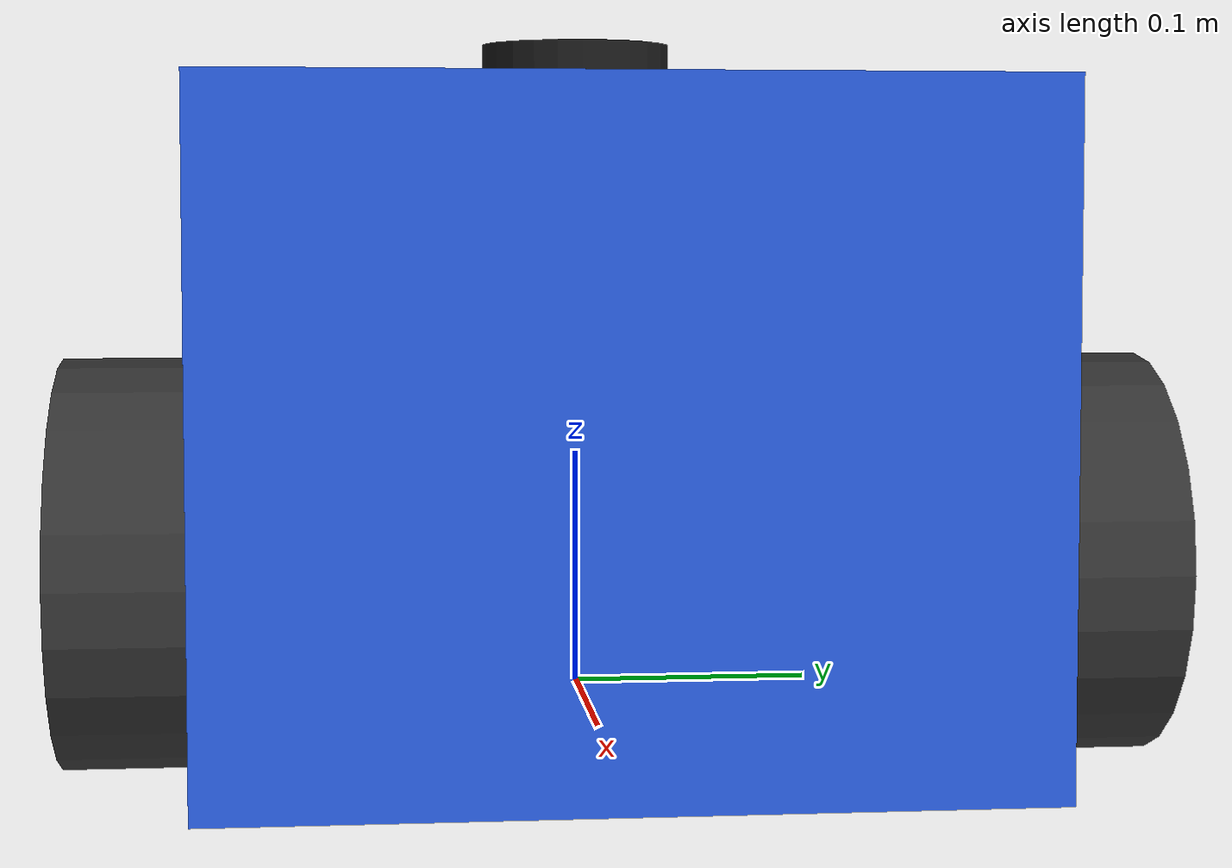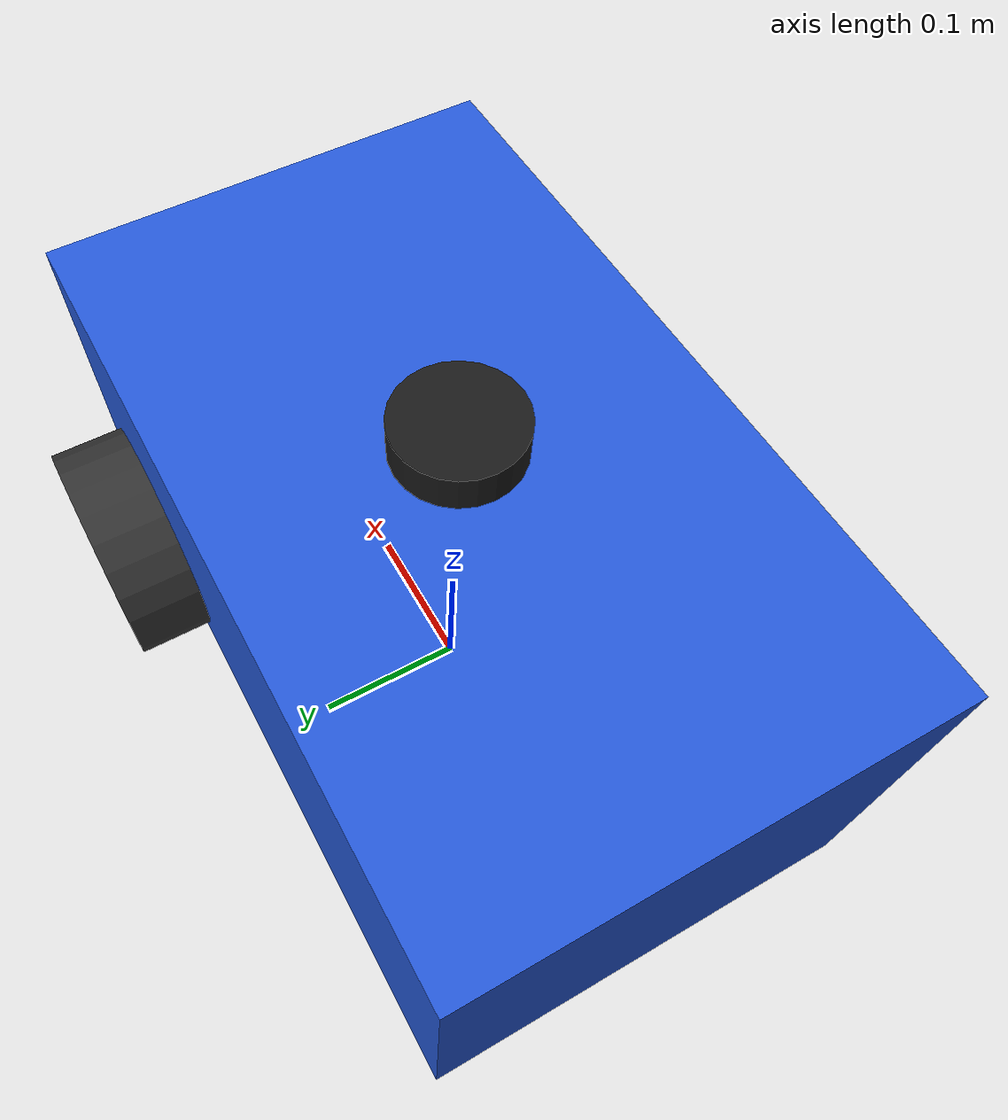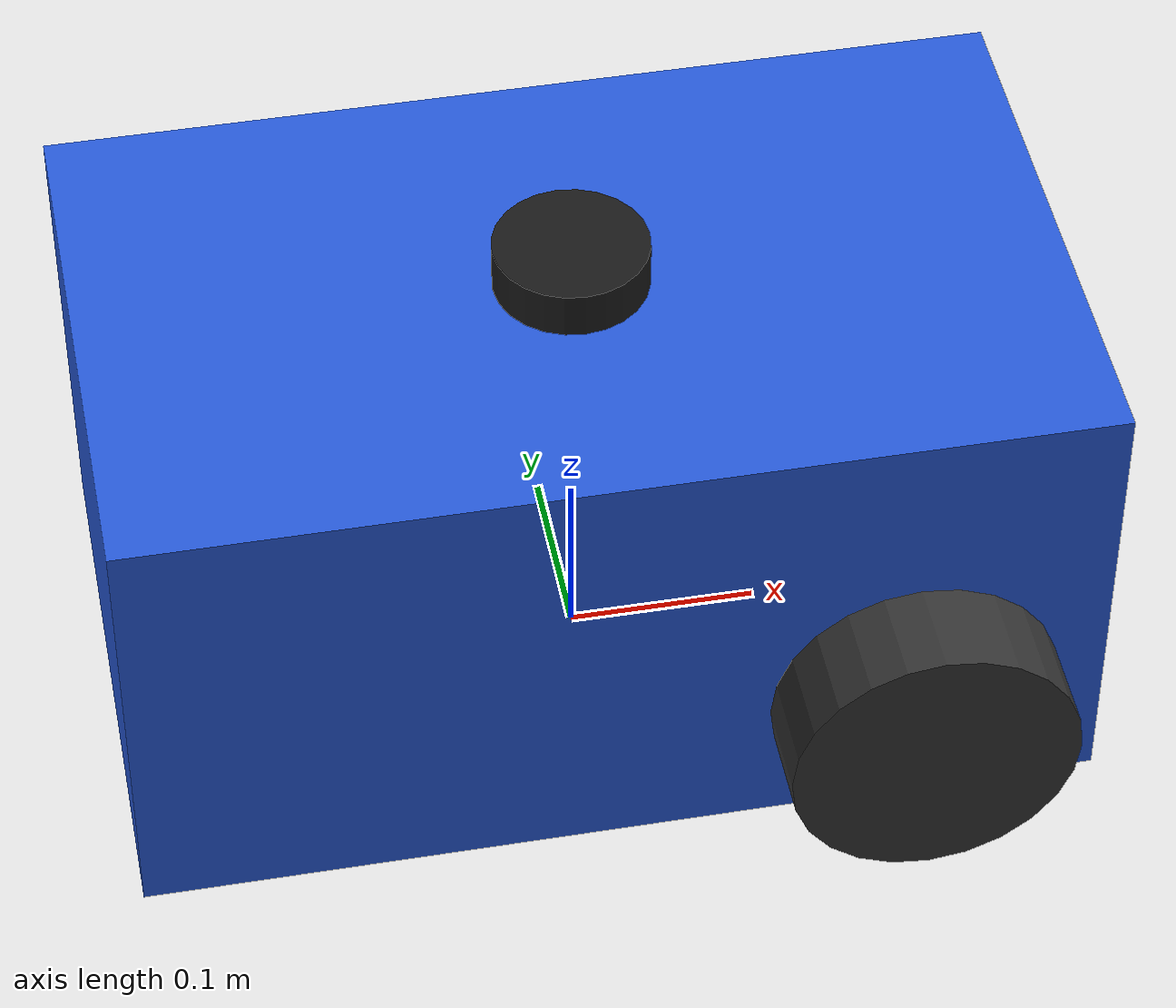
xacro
<?xml version="1.0"?>
<robot xmlns:xacro="http://www.ros.org/wiki/xacro" name="articubot_robot">

  <!-- 包含材质定义                                                    -->
  <xacro:include filename="$(find robot_description)/urdf/materials.xacro"/>

  <!-- 全局参数                                                       -->
  <xacro:property name="M_total" value="2.0"/>        <!-- 总质量 (kg) -->
  <xacro:property name="M_wheel" value="0.2"/>        <!-- 驱动轮质量 (kg) -->
  <xacro:property name="M_caster" value="0.1"/>       <!-- 随动轮质量 (kg) -->
  <xacro:property name="M_body" value="${M_total - 2*M_wheel - M_caster}"/> <!-- 主体质量 (kg) -->

  <!-- 主体 (base_link)                                              -->
  <!-- 尺寸: 0.5m x 0.3m x 0.25m                                    -->
  <link name="base_link">
    <visual>
      <origin xyz="0 0 ${0.25/2}" rpy="0 0 0"/>
      <geometry>
        <box size="0.5 0.3 0.25"/>
      </geometry>
      <material name="robot_blue"/>
    </visual>

    <!-- 碰撞体抬高0.05m离地, 避免车身底盘拖地(否则严重阻碍旋转); 视觉体仍为规范0.25高 -->
    <collision>
      <origin xyz="0 0 0.15" rpy="0 0 0"/>
      <geometry>
        <box size="0.5 0.3 0.20"/>
      </geometry>
    </collision>

    <inertial>
      <origin xyz="0 0 ${0.25/2}" rpy="0 0 0"/>
      <mass value="${M_body}"/>
      <inertia ixx="${M_body*(0.3*0.3+0.25*0.25)/12}"
               ixy="0.0"
               ixz="0.0"
               iyy="${M_body*(0.5*0.5+0.25*0.25)/12}"
               iyz="0.0"
               izz="${M_body*(0.5*0.5+0.3*0.3)/12}"/>
    </inertial>
  </link>

  <!-- 左驱动轮 (left_wheel_link)                                    -->
  <!-- 直径: 0.15m, 宽度: 0.05m, 中心: (0.15, 0.175, 0.075)        -->
  <joint name="left_wheel_joint" type="continuous">
    <parent link="base_link"/>
    <child link="left_wheel_link"/>
    <origin xyz="0.15 0.175 0.075" rpy="${pi/2} 0 0"/>
    <axis xyz="0 0 -1"/>
  </joint>

  <link name="left_wheel_link">
    <visual>
      <geometry>
        <cylinder radius="${0.15/2}" length="0.05"/>
      </geometry>
      <material name="wheel_dark_grey"/>
    </visual>

    <collision>
      <geometry>
        <cylinder radius="${0.15/2}" length="0.05"/>
      </geometry>
    </collision>

    <inertial>
      <mass value="${M_wheel}"/>
      <inertia ixx="${M_wheel*(3*(0.15/2)*(0.15/2)+0.05*0.05)/12}"
               ixy="0.0"
               ixz="0.0"
               iyy="${M_wheel*(3*(0.15/2)*(0.15/2)+0.05*0.05)/12}"
               iyz="0.0"
               izz="${M_wheel*(0.15/2)*(0.15/2)/2}"/>
    </inertial>
  </link>

  <!-- 右驱动轮 (right_wheel_link)                                   -->
  <!-- 直径: 0.15m, 宽度: 0.05m, 中心: (0.15, -0.175, 0.075)       -->
  <joint name="right_wheel_joint" type="continuous">
    <parent link="base_link"/>
    <child link="right_wheel_link"/>
    <origin xyz="0.15 -0.175 0.075" rpy="${pi/2} 0 0"/>
    <axis xyz="0 0 -1"/>
  </joint>

  <link name="right_wheel_link">
    <visual>
      <geometry>
        <cylinder radius="${0.15/2}" length="0.05"/>
      </geometry>
      <material name="wheel_dark_grey"/>
    </visual>

    <collision>
      <geometry>
        <cylinder radius="${0.15/2}" length="0.05"/>
      </geometry>
    </collision>

    <inertial>
      <mass value="${M_wheel}"/>
      <inertia ixx="${M_wheel*(3*(0.15/2)*(0.15/2)+0.05*0.05)/12}"
               ixy="0.0"
               ixz="0.0"
               iyy="${M_wheel*(3*(0.15/2)*(0.15/2)+0.05*0.05)/12}"
               iyz="0.0"
               izz="${M_wheel*(0.15/2)*(0.15/2)/2}"/>
    </inertial>
  </link>

  <!-- 随动轮 (caster_wheel_link)                                    -->
  <!-- 直径: 0.10m, 宽度: 0.05m, 中心: (-0.15, 0, 0.05)            -->
  <!-- 固定关节 (fixed joint)                                        -->
  <joint name="caster_wheel_joint" type="fixed">
    <parent link="base_link"/>
    <child link="caster_wheel_link"/>
    <origin xyz="-0.15 0.0 0.05" rpy="${pi/2} 0 0"/>
  </joint>

  <link name="caster_wheel_link">
    <visual>
      <geometry>
        <cylinder radius="${0.10/2}" length="0.05"/>
      </geometry>
      <material name="caster_grey"/>
    </visual>

    <!-- 碰撞体用球面: 随动轮无法转向, 球面可在各方向自由滑动, 避免阻碍小车旋转 -->
    <collision>
      <geometry>
        <sphere radius="${0.10/2}"/>
      </geometry>
    </collision>

    <inertial>
      <mass value="${M_caster}"/>
      <inertia ixx="${M_caster*(3*(0.10/2)*(0.10/2)+0.05*0.05)/12}"
               ixy="0.0"
               ixz="0.0"
               iyy="${M_caster*(3*(0.10/2)*(0.10/2)+0.05*0.05)/12}"
               iyz="0.0"
               izz="${M_caster*(0.10/2)*(0.10/2)/2}"/>
    </inertial>
  </link>

  <!-- 激光雷达 (laser_link)                                         -->
  <!-- 安装在主体顶部中心: (0, 0, 0.25)                               -->
  <joint name="laser_joint" type="fixed">
    <parent link="base_link"/>
    <child link="laser_link"/>
    <origin xyz="0.0 0.0 0.26" rpy="0 0 0"/>
  </joint>

  <link name="laser_link">
    <visual>
      <origin xyz="0 0 0" rpy="0 0 0"/>
      <geometry>
        <cylinder radius="0.04" length="0.03"/>
      </geometry>
      <material name="lidar_dark"/>
    </visual>

    <collision>
      <origin xyz="0 0 0" rpy="0 0 0"/>
      <geometry>
        <cylinder radius="0.04" length="0.03"/>
      </geometry>
    </collision>

    <inertial>
      <mass value="0.01"/>
      <inertia ixx="0.000001"
               ixy="0.0"
               ixz="0.0"
               iyy="0.000001"
               iyz="0.0"
               izz="0.000001"/>
    </inertial>
  </link>

  <!-- Gazebo 插件配置                                               -->
  <xacro:include filename="$(find robot_description)/urdf/gazebo.xacro"/>

</robot>

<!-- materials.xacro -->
<robot xmlns:xacro="http://www.ros.org/wiki/xacro">

  <!-- 材质定义 (Materials)                                          -->

  <!-- 机器人主体：蓝色金属质感 -->
  <material name="robot_blue">
    <color rgba="0.15 0.35 0.85 1.0"/>
  </material>

  <!-- 轮子：深灰色 -->
  <material name="wheel_dark_grey">
    <color rgba="0.2 0.2 0.2 1.0"/>
  </material>

  <!-- 随动轮：深灰色 -->
  <material name="caster_grey">
    <color rgba="0.25 0.25 0.25 1.0"/>
  </material>

  <!-- 激光雷达：深灰色 -->
  <material name="lidar_dark">
    <color rgba="0.1 0.1 0.1 1.0"/>
  </material>

  <!-- 地面：灰色水泥质感 (用于RViz预览) -->
  <material name="ground_grey">
    <color rgba="0.5 0.5 0.5 1.0"/>
  </material>

  <!-- 障碍物：黑色塑料质感 (用于RViz预览) -->
  <material name="obstacle_black">
    <color rgba="0.1 0.1 0.1 1.0"/>
  </material>

</robot>
